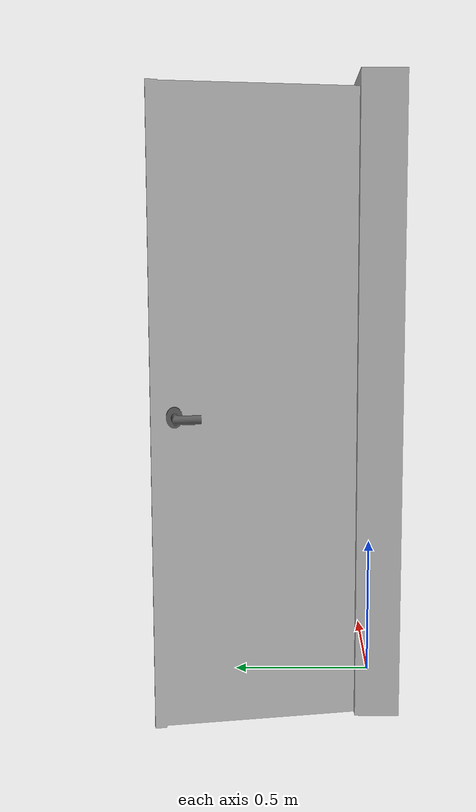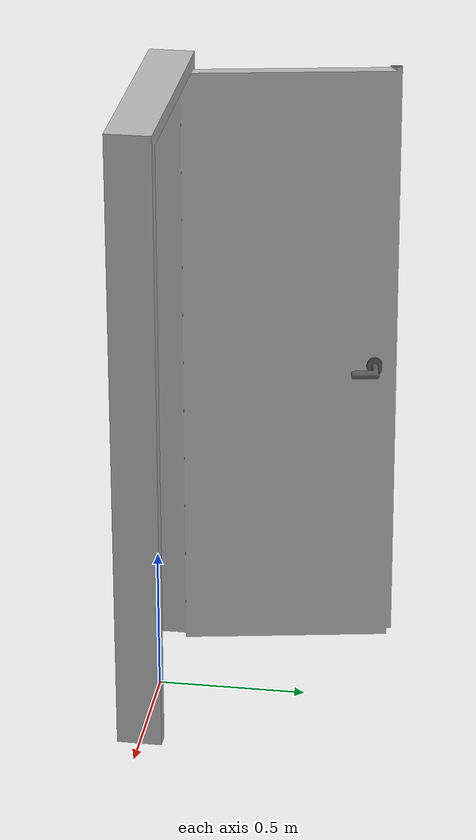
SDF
<?xml version="1.0"?>

<sdf version="1.6">
  <model name='door_70_open'>
    <static>true</static>
    <link name="body">

        <visual name="visual">
          <geometry>
            <mesh><uri>model://models/door_70_open/meshes/door_70_open.dae</uri></mesh>
          </geometry>
        </visual>

        <collision name="collision">
          <geometry>
            <mesh><uri>model://models/door_70_open/meshes/door_70_open.dae</uri></mesh>
          </geometry>
        </collision>

    </link>
  </model>
</sdf>
